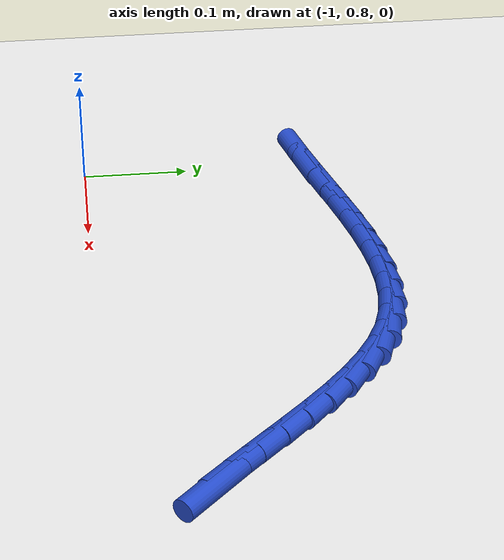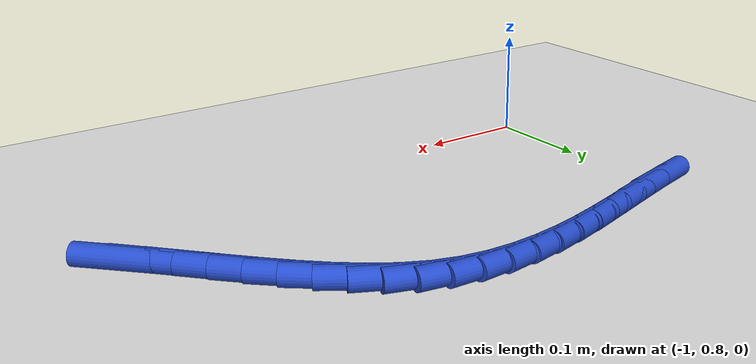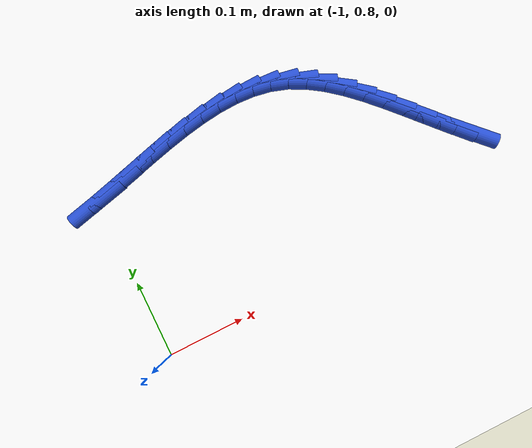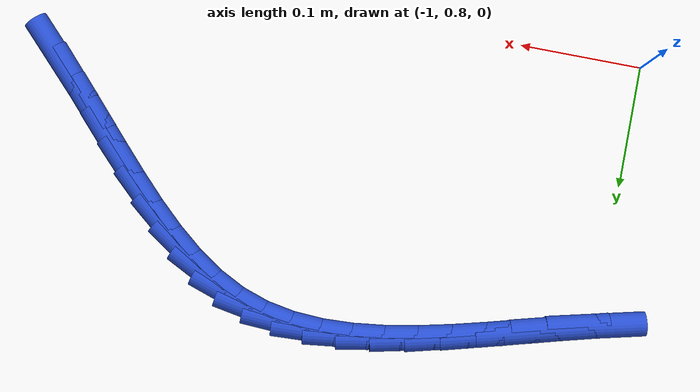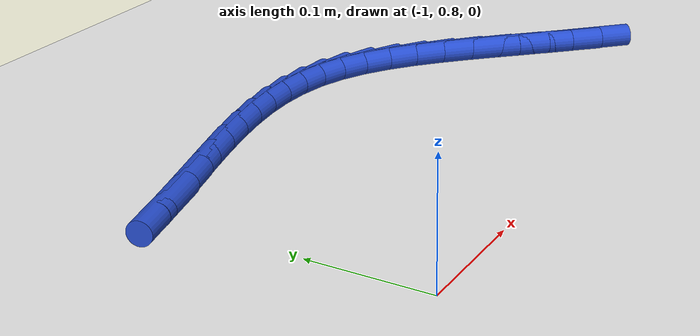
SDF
<sdf version="1.6">
 <world name="default">
  <model name="ground_plane">
   <static>1</static>
   <link name="link">
    <collision name="collision">
     <geometry><plane><normal>0 0 1</normal><size>100 100</size></plane></geometry>
     <surface><friction><ode><mu>100</mu><mu2>50</mu2></ode></friction></surface>
    </collision>
    <visual name="visual">
     <cast_shadows>0</cast_shadows>
     <geometry><plane><normal>0 0 1</normal><size>100 100</size></plane></geometry>
     <material>
      <script><uri>file://media/materials/scripts/gazebo.material</uri><name>Gazebo/WhiteGlow</name></script>
     </material>
    </visual>
   </link>
  </model>
  <model name="line">
   <link name="link_40">
    <pose>-0.5331489305177755 0.8853958024112147 0.01 0 1.57 -0.8047659717073926</pose>
    <collision name="collision">
     <geometry><cylinder><radius>0.01</radius><length>0.08</length></cylinder></geometry>
    </collision>
    <visual name="visual">
     <material>
      <script><name>Gazebo/Blue</name><uri>file://media/materials/scripts/gazebo.material</uri></script>
     </material>
     <geometry><cylinder><radius>0.01</radius><length>0.08</length></cylinder></geometry>
    </visual>
   </link>
   <link name="link_41">
    <pose>-0.552869728734417 0.9058956844705387 0.01 0 1.57 -0.8285849994221972</pose>
    <collision name="collision">
     <geometry><cylinder><radius>0.01</radius><length>0.08</length></cylinder></geometry>
    </collision>
    <visual name="visual">
     <material>
      <script><name>Gazebo/Blue</name><uri>file://media/materials/scripts/gazebo.material</uri></script>
     </material>
     <geometry><cylinder><radius>0.01</radius><length>0.08</length></cylinder></geometry>
    </visual>
   </link>
   <link name="link_42">
    <pose>-0.5721662287740646 0.9269352556055884 0.01 0 1.57 -0.8357144583643168</pose>
    <collision name="collision">
     <geometry><cylinder><radius>0.01</radius><length>0.08</length></cylinder></geometry>
    </collision>
    <visual name="visual">
     <material>
      <script><name>Gazebo/Blue</name><uri>file://media/materials/scripts/gazebo.material</uri></script>
     </material>
     <geometry><cylinder><radius>0.01</radius><length>0.08</length></cylinder></geometry>
    </visual>
   </link>
   <link name="link_43">
    <pose>-0.5912280179543508 0.9480187111533087 0.01 0 1.57 -0.8261056235948407</pose>
    <collision name="collision">
     <geometry><cylinder><radius>0.01</radius><length>0.08</length></cylinder></geometry>
    </collision>
    <visual name="visual">
     <material>
      <script><name>Gazebo/Blue</name><uri>file://media/materials/scripts/gazebo.material</uri></script>
     </material>
     <geometry><cylinder><radius>0.01</radius><length>0.08</length></cylinder></geometry>
    </visual>
   </link>
   <link name="link_44">
    <pose>-0.6102446835929072 0.9686502464506442 0.01 0 1.57 -0.7988529256225197</pose>
    <collision name="collision">
     <geometry><cylinder><radius>0.01</radius><length>0.08</length></cylinder></geometry>
    </collision>
    <visual name="visual">
     <material>
      <script><name>Gazebo/Blue</name><uri>file://media/materials/scripts/gazebo.material</uri></script>
     </material>
     <geometry><cylinder><radius>0.01</radius><length>0.08</length></cylinder></geometry>
    </visual>
   </link>
   <link name="link_45">
    <pose>-0.6294058130073666 0.9883340568345396 0.01 0 1.57 -0.7521552305515299</pose>
    <collision name="collision">
     <geometry><cylinder><radius>0.01</radius><length>0.08</length></cylinder></geometry>
    </collision>
    <visual name="visual">
     <material>
      <script><name>Gazebo/Blue</name><uri>file://media/materials/scripts/gazebo.material</uri></script>
     </material>
     <geometry><cylinder><radius>0.01</radius><length>0.08</length></cylinder></geometry>
    </visual>
   </link>
   <link name="link_46">
    <pose>-0.6489009935153609 1.0065743376419392 0.01 0 1.57 -0.6833884912621196</pose>
    <collision name="collision">
     <geometry><cylinder><radius>0.01</radius><length>0.08</length></cylinder></geometry>
    </collision>
    <visual name="visual">
     <material>
      <script><name>Gazebo/Blue</name><uri>file://media/materials/scripts/gazebo.material</uri></script>
     </material>
     <geometry><cylinder><radius>0.01</radius><length>0.08</length></cylinder></geometry>
    </visual>
   </link>
   <link name="link_47">
    <pose>-0.6689198124345221 1.0228752842097881 0.01 0 1.57 -0.5894852782856621</pose>
    <collision name="collision">
     <geometry><cylinder><radius>0.01</radius><length>0.08</length></cylinder></geometry>
    </collision>
    <visual name="visual">
     <material>
      <script><name>Gazebo/Blue</name><uri>file://media/materials/scripts/gazebo.material</uri></script>
     </material>
     <geometry><cylinder><radius>0.01</radius><length>0.08</length></cylinder></geometry>
    </visual>
   </link>
   <link name="link_48">
    <pose>-0.689651857082483 1.0367410918750308 0.01 0 1.57 -0.4679806199214394</pose>
    <collision name="collision">
     <geometry><cylinder><radius>0.01</radius><length>0.08</length></cylinder></geometry>
    </collision>
    <visual name="visual">
     <material>
      <script><name>Gazebo/Blue</name><uri>file://media/materials/scripts/gazebo.material</uri></script>
     </material>
     <geometry><cylinder><radius>0.01</radius><length>0.08</length></cylinder></geometry>
    </visual>
   </link>
   <link name="link_49">
    <pose>-0.7112867147768751 1.0476759559746118 0.01 0 1.57 -0.3211746160896842</pose>
    <collision name="collision">
     <geometry><cylinder><radius>0.01</radius><length>0.08</length></cylinder></geometry>
    </collision>
    <visual name="visual">
     <material>
      <script><name>Gazebo/Blue</name><uri>file://media/materials/scripts/gazebo.material</uri></script>
     </material>
     <geometry><cylinder><radius>0.01</radius><length>0.08</length></cylinder></geometry>
    </visual>
   </link>
   <link name="link_50">
    <pose>-0.7339974164544913 1.0552316593627975 0.01 0 1.57 -0.17690437842264709</pose>
    <collision name="collision">
     <geometry><cylinder><radius>0.01</radius><length>0.08</length></cylinder></geometry>
    </collision>
    <visual name="visual">
     <material>
      <script><name>Gazebo/Blue</name><uri>file://media/materials/scripts/gazebo.material</uri></script>
     </material>
     <geometry><cylinder><radius>0.01</radius><length>0.08</length></cylinder></geometry>
    </visual>
   </link>
   <link name="link_51">
    <pose>-0.7577752057844984 1.059482490677623 0.01 0 1.57 -0.054279942633761936</pose>
    <collision name="collision">
     <geometry><cylinder><radius>0.01</radius><length>0.08</length></cylinder></geometry>
    </collision>
    <visual name="visual">
     <material>
      <script><name>Gazebo/Blue</name><uri>file://media/materials/scripts/gazebo.material</uri></script>
     </material>
     <geometry><cylinder><radius>0.01</radius><length>0.08</length></cylinder></geometry>
    </visual>
   </link>
   <link name="link_52">
    <pose>-0.7824989244576854 1.0608258122496703 0.01 0 1.57 0.04545525336521164</pose>
    <collision name="collision">
     <geometry><cylinder><radius>0.01</radius><length>0.08</length></cylinder></geometry>
    </collision>
    <visual name="visual">
     <material>
      <script><name>Gazebo/Blue</name><uri>file://media/materials/scripts/gazebo.material</uri></script>
     </material>
     <geometry><cylinder><radius>0.01</radius><length>0.08</length></cylinder></geometry>
    </visual>
   </link>
   <link name="link_53">
    <pose>-0.8080457483329381 1.059663774461046 0.01 0 1.57 0.12376819300810715</pose>
    <collision name="collision">
     <geometry><cylinder><radius>0.01</radius><length>0.08</length></cylinder></geometry>
    </collision>
    <visual name="visual">
     <material>
      <script><name>Gazebo/Blue</name><uri>file://media/materials/scripts/gazebo.material</uri></script>
     </material>
     <geometry><cylinder><radius>0.01</radius><length>0.08</length></cylinder></geometry>
    </visual>
   </link>
   <link name="link_54">
    <pose>-0.8342928532691425 1.056398527693856 0.01 0 1.57 0.1830673455067763</pose>
    <collision name="collision">
     <geometry><cylinder><radius>0.01</radius><length>0.08</length></cylinder></geometry>
    </collision>
    <visual name="visual">
     <material>
      <script><name>Gazebo/Blue</name><uri>file://media/materials/scripts/gazebo.material</uri></script>
     </material>
     <geometry><cylinder><radius>0.01</radius><length>0.08</length></cylinder></geometry>
    </visual>
   </link>
   <link name="link_55">
    <pose>-0.8611174151251849 1.0514322223302068 0.01 0 1.57 0.22575497828030935</pose>
    <collision name="collision">
     <geometry><cylinder><radius>0.01</radius><length>0.08</length></cylinder></geometry>
    </collision>
    <visual name="visual">
     <material>
      <script><name>Gazebo/Blue</name><uri>file://media/materials/scripts/gazebo.material</uri></script>
     </material>
     <geometry><cylinder><radius>0.01</radius><length>0.08</length></cylinder></geometry>
    </visual>
   </link>
   <link name="link_56">
    <pose>-0.8883966097599513 1.0451670087522047 0.01 0 1.57 0.25379501297461127</pose>
    <collision name="collision">
     <geometry><cylinder><radius>0.01</radius><length>0.08</length></cylinder></geometry>
    </collision>
    <visual name="visual">
     <material>
      <script><name>Gazebo/Blue</name><uri>file://media/materials/scripts/gazebo.material</uri></script>
     </material>
     <geometry><cylinder><radius>0.01</radius><length>0.08</length></cylinder></geometry>
    </visual>
   </link>
   <link name="link_57">
    <pose>-0.9160076130323278 1.0380050373419563 0.01 0 1.57 0.26856945610888344</pose>
    <collision name="collision">
     <geometry><cylinder><radius>0.01</radius><length>0.08</length></cylinder></geometry>
    </collision>
    <visual name="visual">
     <material>
      <script><name>Gazebo/Blue</name><uri>file://media/materials/scripts/gazebo.material</uri></script>
     </material>
     <geometry><cylinder><radius>0.01</radius><length>0.08</length></cylinder></geometry>
    </visual>
   </link>
   <link name="link_58">
    <pose>-0.9438276008012003 1.0303484584815674 0.01 0 1.57 0.27085796134496737</pose>
    <collision name="collision">
     <geometry><cylinder><radius>0.01</radius><length>0.08</length></cylinder></geometry>
    </collision>
    <visual name="visual">
     <material>
      <script><name>Gazebo/Blue</name><uri>file://media/materials/scripts/gazebo.material</uri></script>
     </material>
     <geometry><cylinder><radius>0.01</radius><length>0.08</length></cylinder></geometry>
    </visual>
   </link>
   <link name="link_59">
    <pose>-0.9717337489254549 1.022599422553145 0.01 0 1.57 0.260852954387198</pose>
    <collision name="collision">
     <geometry><cylinder><radius>0.01</radius><length>0.08</length></cylinder></geometry>
    </collision>
    <visual name="visual">
     <material>
      <script><name>Gazebo/Blue</name><uri>file://media/materials/scripts/gazebo.material</uri></script>
     </material>
     <geometry><cylinder><radius>0.01</radius><length>0.08</length></cylinder></geometry>
    </visual>
   </link>
   <link name="link_60">
    <pose>-0.9996032332639778 1.0151600799387952 0.01 0 1.57 0.23817415935696407</pose>
    <collision name="collision">
     <geometry><cylinder><radius>0.01</radius><length>0.08</length></cylinder></geometry>
    </collision>
    <visual name="visual">
     <material>
      <script><name>Gazebo/Blue</name><uri>file://media/materials/scripts/gazebo.material</uri></script>
     </material>
     <geometry><cylinder><radius>0.01</radius><length>0.08</length></cylinder></geometry>
    </visual>
   </link>
  </model>
 </world>
</sdf>
